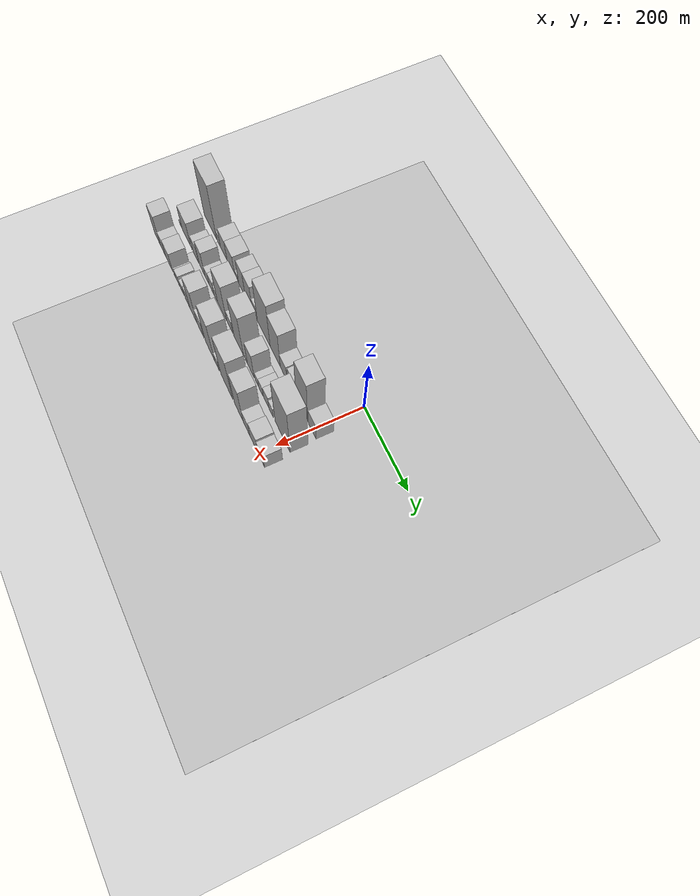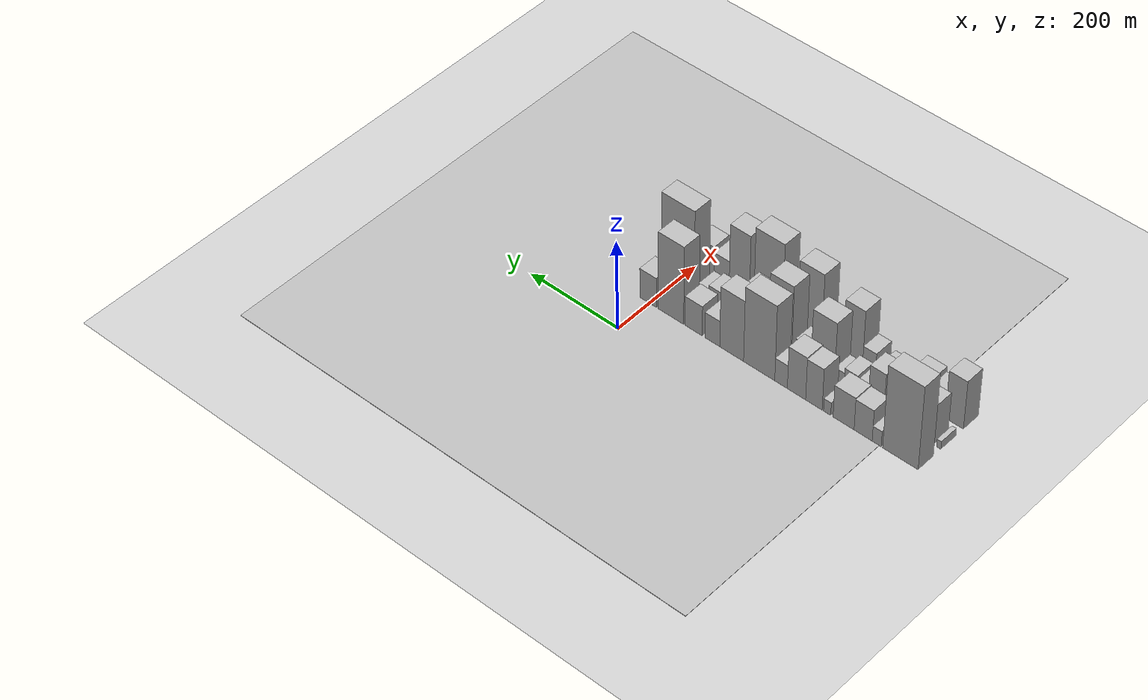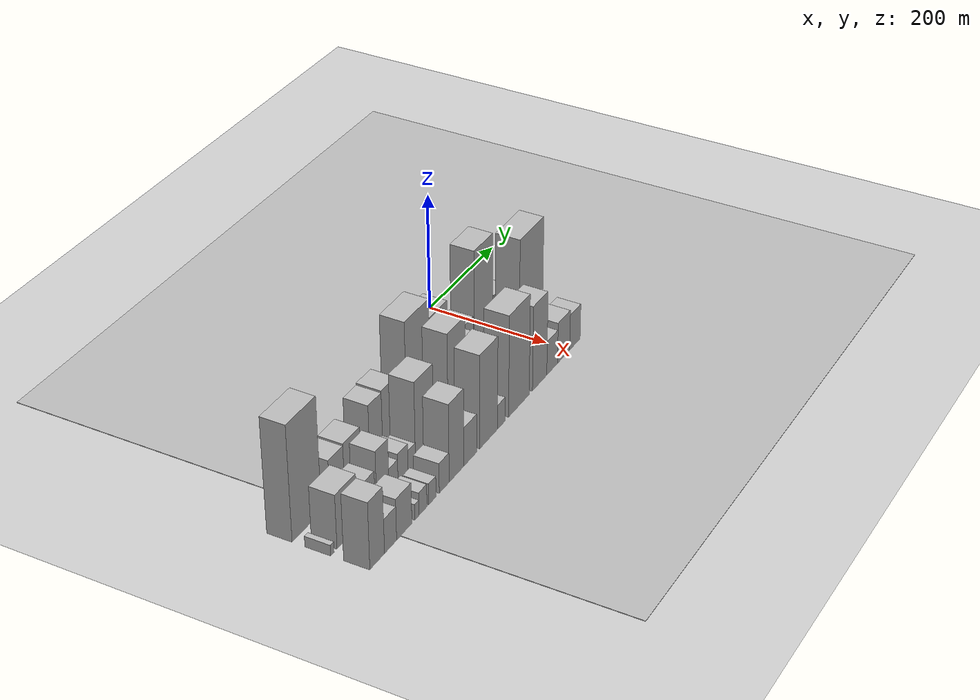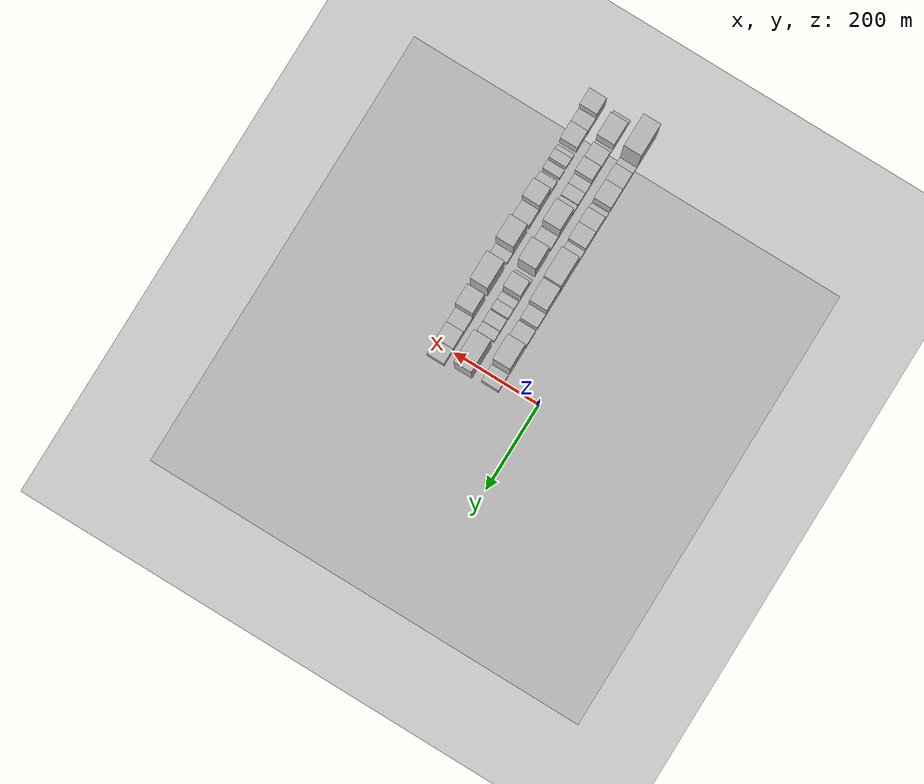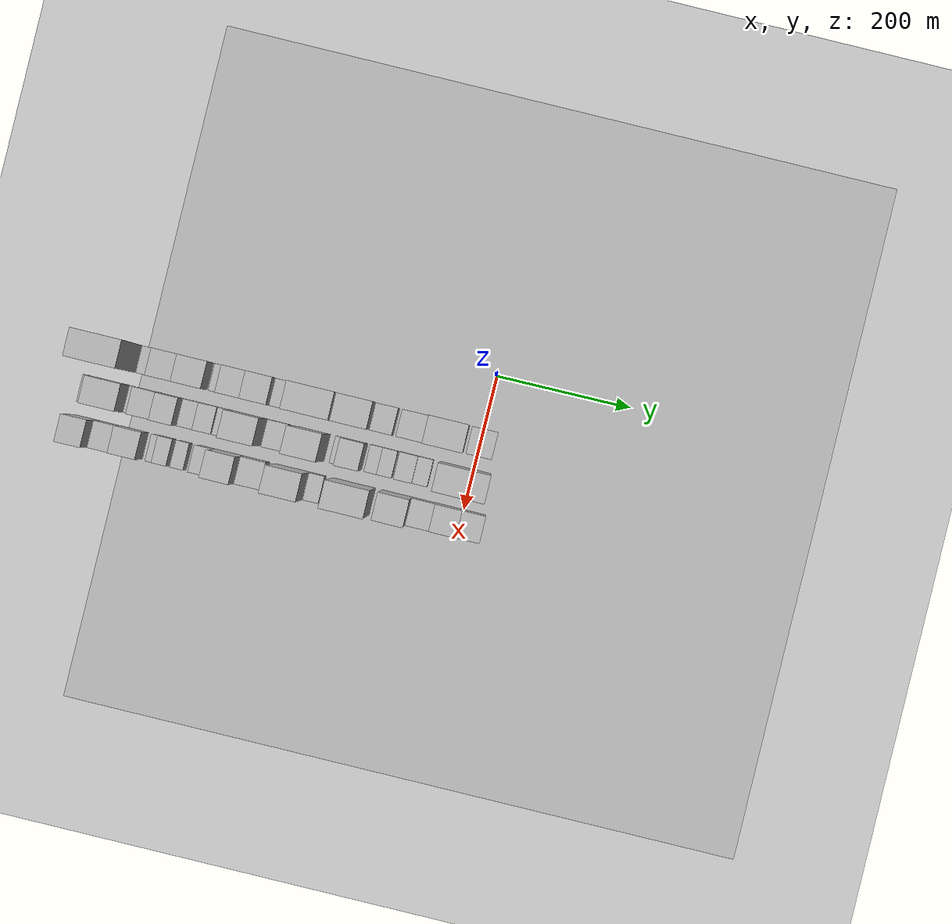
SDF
<sdf version="1.6">
 <world name="default">
  <include><name>ground_plane_1</name><uri>model://HANNAS_ground_plane</uri></include>
  <include>
   <name>ground_plane_2</name>
   <uri>model://HANNAS_ground_plane</uri>
   <pose>100 0 0  0 0 0</pose>
  </include>
  <model name="building_1">
   <static>1</static>
   <pose>100.0000 -543.3628 0 0.000000 0.000000 0.000000</pose>
   <link name="link">
    <pose>0 0 96.00 0 0 0</pose>
    <collision name="collision"><geometry><box><size>40.0000 73.2743 192.0000</size></box></geometry></collision>
    <visual name="visual">
     <cast_shadows>0</cast_shadows>
     <geometry><box><size>40.0000 73.2743 192.0000</size></box></geometry>
     <material>
      <script>
       <uri>model://HANNAS_wall/materials/scripts</uri>
       <uri>model://HANNAS_wall/materials/textures</uri>
       <name>vrc/HANNAS_wall</name>
      </script>
     </material>
    </visual>
   </link>
  </model>
  <model name="building_2">
   <static>1</static>
   <pose>100.0000 -494.3452 0 0.000000 0.000000 0.000000</pose>
   <link name="link">
    <pose>0 0 18.00 0 0 0</pose>
    <collision name="collision"><geometry><box><size>40.0000 18.7610 36.0000</size></box></geometry></collision>
    <visual name="visual">
     <cast_shadows>0</cast_shadows>
     <geometry><box><size>40.0000 18.7610 36.0000</size></box></geometry>
     <material>
      <script>
       <uri>model://HANNAS_wall/materials/scripts</uri>
       <uri>model://HANNAS_wall/materials/textures</uri>
       <name>vrc/HANNAS_wall</name>
      </script>
     </material>
    </visual>
   </link>
  </model>
  <model name="building_3">
   <static>1</static>
   <pose>100.0000 -466.0397 0 0.000000 0.000000 0.000000</pose>
   <link name="link">
    <pose>0 0 36.00 0 0 0</pose>
    <collision name="collision"><geometry><box><size>40.0000 37.8501 72.0000</size></box></geometry></collision>
    <visual name="visual">
     <cast_shadows>0</cast_shadows>
     <geometry><box><size>40.0000 37.8501 72.0000</size></box></geometry>
     <material>
      <script>
       <uri>model://HANNAS_wall/materials/scripts</uri>
       <uri>model://HANNAS_wall/materials/textures</uri>
       <name>vrc/HANNAS_wall</name>
      </script>
     </material>
    </visual>
   </link>
  </model>
  <model name="building_4">
   <static>1</static>
   <pose>100.0000 -424.9990 0 0.000000 0.000000 0.000000</pose>
   <link name="link">
    <pose>0 0 37.50 0 0 0</pose>
    <collision name="collision"><geometry><box><size>40.0000 44.2313 75.0000</size></box></geometry></collision>
    <visual name="visual">
     <cast_shadows>0</cast_shadows>
     <geometry><box><size>40.0000 44.2313 75.0000</size></box></geometry>
     <material>
      <script>
       <uri>model://HANNAS_wall/materials/scripts</uri>
       <uri>model://HANNAS_wall/materials/textures</uri>
       <name>vrc/HANNAS_wall</name>
      </script>
     </material>
    </visual>
   </link>
  </model>
  <model name="building_5">
   <static>1</static>
   <pose>100.0000 -390.2851 0 0.000000 0.000000 0.000000</pose>
   <link name="link">
    <pose>0 0 15.00 0 0 0</pose>
    <collision name="collision"><geometry><box><size>40.0000 15.1964 30.0000</size></box></geometry></collision>
    <visual name="visual">
     <cast_shadows>0</cast_shadows>
     <geometry><box><size>40.0000 15.1964 30.0000</size></box></geometry>
     <material>
      <script>
       <uri>model://HANNAS_wall/materials/scripts</uri>
       <uri>model://HANNAS_wall/materials/textures</uri>
       <name>vrc/HANNAS_wall</name>
      </script>
     </material>
    </visual>
   </link>
  </model>
  <model name="building_6">
   <static>1</static>
   <pose>100.0000 -362.1027 0 0.000000 0.000000 0.000000</pose>
   <link name="link">
    <pose>0 0 48.00 0 0 0</pose>
    <collision name="collision"><geometry><box><size>40.0000 35.1683 96.0000</size></box></geometry></collision>
    <visual name="visual">
     <cast_shadows>0</cast_shadows>
     <geometry><box><size>40.0000 35.1683 96.0000</size></box></geometry>
     <material>
      <script>
       <uri>model://HANNAS_wall/materials/scripts</uri>
       <uri>model://HANNAS_wall/materials/textures</uri>
       <name>vrc/HANNAS_wall</name>
      </script>
     </material>
    </visual>
   </link>
  </model>
  <model name="building_7">
   <static>1</static>
   <pose>100.0000 -324.9261 0 0.000000 0.000000 0.000000</pose>
   <link name="link">
    <pose>0 0 49.50 0 0 0</pose>
    <collision name="collision"><geometry><box><size>40.0000 39.1849 99.0000</size></box></geometry></collision>
    <visual name="visual">
     <cast_shadows>0</cast_shadows>
     <geometry><box><size>40.0000 39.1849 99.0000</size></box></geometry>
     <material>
      <script>
       <uri>model://HANNAS_wall/materials/scripts</uri>
       <uri>model://HANNAS_wall/materials/textures</uri>
       <name>vrc/HANNAS_wall</name>
      </script>
     </material>
    </visual>
   </link>
  </model>
  <model name="building_8">
   <static>1</static>
   <pose>100.0000 -291.7243 0 0.000000 0.000000 0.000000</pose>
   <link name="link">
    <pose>0 0 27.00 0 0 0</pose>
    <collision name="collision"><geometry><box><size>40.0000 27.2187 54.0000</size></box></geometry></collision>
    <visual name="visual">
     <cast_shadows>0</cast_shadows>
     <geometry><box><size>40.0000 27.2187 54.0000</size></box></geometry>
     <material>
      <script>
       <uri>model://HANNAS_wall/materials/scripts</uri>
       <uri>model://HANNAS_wall/materials/textures</uri>
       <name>vrc/HANNAS_wall</name>
      </script>
     </material>
    </visual>
   </link>
  </model>
  <model name="building_9">
   <static>1</static>
   <pose>100.0000 -244.1789 0 0.000000 0.000000 0.000000</pose>
   <link name="link">
    <pose>0 0 87.00 0 0 0</pose>
    <collision name="collision"><geometry><box><size>40.0000 67.8723 174.0000</size></box></geometry></collision>
    <visual name="visual">
     <cast_shadows>0</cast_shadows>
     <geometry><box><size>40.0000 67.8723 174.0000</size></box></geometry>
     <material>
      <script>
       <uri>model://HANNAS_wall/materials/scripts</uri>
       <uri>model://HANNAS_wall/materials/textures</uri>
       <name>vrc/HANNAS_wall</name>
      </script>
     </material>
    </visual>
   </link>
  </model>
  <model name="building_10">
   <static>1</static>
   <pose>100.0000 -184.0517 0 0.000000 0.000000 0.000000</pose>
   <link name="link">
    <pose>0 0 70.50 0 0 0</pose>
    <collision name="collision"><geometry><box><size>40.0000 52.3820 141.0000</size></box></geometry></collision>
    <visual name="visual">
     <cast_shadows>0</cast_shadows>
     <geometry><box><size>40.0000 52.3820 141.0000</size></box></geometry>
     <material>
      <script>
       <uri>model://HANNAS_wall/materials/scripts</uri>
       <uri>model://HANNAS_wall/materials/textures</uri>
       <name>vrc/HANNAS_wall</name>
      </script>
     </material>
    </visual>
   </link>
  </model>
  <model name="building_11">
   <static>1</static>
   <pose>100.0000 -141.3786 0 0.000000 0.000000 0.000000</pose>
   <link name="link">
    <pose>0 0 30.00 0 0 0</pose>
    <collision name="collision"><geometry><box><size>40.0000 32.9641 60.0000</size></box></geometry></collision>
    <visual name="visual">
     <cast_shadows>0</cast_shadows>
     <geometry><box><size>40.0000 32.9641 60.0000</size></box></geometry>
     <material>
      <script>
       <uri>model://HANNAS_wall/materials/scripts</uri>
       <uri>model://HANNAS_wall/materials/textures</uri>
       <name>vrc/HANNAS_wall</name>
      </script>
     </material>
    </visual>
   </link>
  </model>
  <model name="building_12">
   <static>1</static>
   <pose>100.0000 -99.7368 0 0.000000 0.000000 0.000000</pose>
   <link name="link">
    <pose>0 0 34.50 0 0 0</pose>
    <collision name="collision"><geometry><box><size>40.0000 38.3196 69.0000</size></box></geometry></collision>
    <visual name="visual">
     <cast_shadows>0</cast_shadows>
     <geometry><box><size>40.0000 38.3196 69.0000</size></box></geometry>
     <material>
      <script>
       <uri>model://HANNAS_wall/materials/scripts</uri>
       <uri>model://HANNAS_wall/materials/textures</uri>
       <name>vrc/HANNAS_wall</name>
      </script>
     </material>
    </visual>
   </link>
  </model>
  <model name="building_13">
   <static>1</static>
   <pose>100.0000 -49.0089 0 0.000000 0.000000 0.000000</pose>
   <link name="link">
    <pose>0 0 90.00 0 0 0</pose>
    <collision name="collision"><geometry><box><size>40.0000 57.1362 180.0000</size></box></geometry></collision>
    <visual name="visual">
     <cast_shadows>0</cast_shadows>
     <geometry><box><size>40.0000 57.1362 180.0000</size></box></geometry>
     <material>
      <script>
       <uri>model://HANNAS_wall/materials/scripts</uri>
       <uri>model://HANNAS_wall/materials/textures</uri>
       <name>vrc/HANNAS_wall</name>
      </script>
     </material>
    </visual>
   </link>
  </model>
  <model name="building_14">
   <static>1</static>
   <pose>100.0000 2.4698 0 0.000000 0.000000 0.000000</pose>
   <link name="link">
    <pose>0 0 34.50 0 0 0</pose>
    <collision name="collision"><geometry><box><size>40.0000 37.8213 69.0000</size></box></geometry></collision>
    <visual name="visual">
     <cast_shadows>0</cast_shadows>
     <geometry><box><size>40.0000 37.8213 69.0000</size></box></geometry>
     <material>
      <script>
       <uri>model://HANNAS_wall/materials/scripts</uri>
       <uri>model://HANNAS_wall/materials/textures</uri>
       <name>vrc/HANNAS_wall</name>
      </script>
     </material>
    </visual>
   </link>
  </model>
  <model name="building_30">
   <static>1</static>
   <pose>160.0000 -575.5376 0 0.000000 0.000000 0.000000</pose>
   <link name="link">
    <pose>0 0 9.00 0 0 0</pose>
    <collision name="collision"><geometry><box><size>40.0000 8.9249 18.0000</size></box></geometry></collision>
    <visual name="visual">
     <cast_shadows>0</cast_shadows>
     <geometry><box><size>40.0000 8.9249 18.0000</size></box></geometry>
     <material>
      <script>
       <uri>model://HANNAS_wall/materials/scripts</uri>
       <uri>model://HANNAS_wall/materials/textures</uri>
       <name>vrc/HANNAS_wall</name>
      </script>
     </material>
    </visual>
   </link>
  </model>
  <model name="building_31">
   <static>1</static>
   <pose>160.0000 -537.7754 0 0.000000 0.000000 0.000000</pose>
   <link name="link">
    <pose>0 0 45.00 0 0 0</pose>
    <collision name="collision"><geometry><box><size>40.0000 52.5994 90.0000</size></box></geometry></collision>
    <visual name="visual">
     <cast_shadows>0</cast_shadows>
     <geometry><box><size>40.0000 52.5994 90.0000</size></box></geometry>
     <material>
      <script>
       <uri>model://HANNAS_wall/materials/scripts</uri>
       <uri>model://HANNAS_wall/materials/textures</uri>
       <name>vrc/HANNAS_wall</name>
      </script>
     </material>
    </visual>
   </link>
  </model>
  <model name="building_32">
   <static>1</static>
   <pose>160.0000 -507.9673 0 0.000000 0.000000 0.000000</pose>
   <link name="link">
    <pose>0 0 7.50 0 0 0</pose>
    <collision name="collision"><geometry><box><size>40.0000 7.0168 15.0000</size></box></geometry></collision>
    <visual name="visual">
     <cast_shadows>0</cast_shadows>
     <geometry><box><size>40.0000 7.0168 15.0000</size></box></geometry>
     <material>
      <script>
       <uri>model://HANNAS_wall/materials/scripts</uri>
       <uri>model://HANNAS_wall/materials/textures</uri>
       <name>vrc/HANNAS_wall</name>
      </script>
     </material>
    </visual>
   </link>
  </model>
  <model name="building_33">
   <static>1</static>
   <pose>160.0000 -482.4721 0 0.000000 0.000000 0.000000</pose>
   <link name="link">
    <pose>0 0 31.50 0 0 0</pose>
    <collision name="collision"><geometry><box><size>40.0000 33.9736 63.0000</size></box></geometry></collision>
    <visual name="visual">
     <cast_shadows>0</cast_shadows>
     <geometry><box><size>40.0000 33.9736 63.0000</size></box></geometry>
     <material>
      <script>
       <uri>model://HANNAS_wall/materials/scripts</uri>
       <uri>model://HANNAS_wall/materials/textures</uri>
       <name>vrc/HANNAS_wall</name>
      </script>
     </material>
    </visual>
   </link>
  </model>
  <model name="building_34">
   <static>1</static>
   <pose>160.0000 -444.8592 0 0.000000 0.000000 0.000000</pose>
   <link name="link">
    <pose>0 0 46.50 0 0 0</pose>
    <collision name="collision"><geometry><box><size>40.0000 33.2523 93.0000</size></box></geometry></collision>
    <visual name="visual">
     <cast_shadows>0</cast_shadows>
     <geometry><box><size>40.0000 33.2523 93.0000</size></box></geometry>
     <material>
      <script>
       <uri>model://HANNAS_wall/materials/scripts</uri>
       <uri>model://HANNAS_wall/materials/textures</uri>
       <name>vrc/HANNAS_wall</name>
      </script>
     </material>
    </visual>
   </link>
  </model>
  <model name="building_35">
   <static>1</static>
   <pose>160.0000 -416.3268 0 0.000000 0.000000 0.000000</pose>
   <link name="link">
    <pose>0 0 21.00 0 0 0</pose>
    <collision name="collision"><geometry><box><size>40.0000 23.8125 42.0000</size></box></geometry></collision>
    <visual name="visual">
     <cast_shadows>0</cast_shadows>
     <geometry><box><size>40.0000 23.8125 42.0000</size></box></geometry>
     <material>
      <script>
       <uri>model://HANNAS_wall/materials/scripts</uri>
       <uri>model://HANNAS_wall/materials/textures</uri>
       <name>vrc/HANNAS_wall</name>
      </script>
     </material>
    </visual>
   </link>
  </model>
  <model name="building_36">
   <static>1</static>
   <pose>160.0000 -390.6850 0 0.000000 0.000000 0.000000</pose>
   <link name="link">
    <pose>0 0 25.50 0 0 0</pose>
    <collision name="collision"><geometry><box><size>40.0000 27.4712 51.0000</size></box></geometry></collision>
    <visual name="visual">
     <cast_shadows>0</cast_shadows>
     <geometry><box><size>40.0000 27.4712 51.0000</size></box></geometry>
     <material>
      <script>
       <uri>model://HANNAS_wall/materials/scripts</uri>
       <uri>model://HANNAS_wall/materials/textures</uri>
       <name>vrc/HANNAS_wall</name>
      </script>
     </material>
    </visual>
   </link>
  </model>
  <model name="building_37">
   <static>1</static>
   <pose>160.0000 -366.7879 0 0.000000 0.000000 0.000000</pose>
   <link name="link">
    <pose>0 0 19.50 0 0 0</pose>
    <collision name="collision"><geometry><box><size>40.0000 20.3230 39.0000</size></box></geometry></collision>
    <visual name="visual">
     <cast_shadows>0</cast_shadows>
     <geometry><box><size>40.0000 20.3230 39.0000</size></box></geometry>
     <material>
      <script>
       <uri>model://HANNAS_wall/materials/scripts</uri>
       <uri>model://HANNAS_wall/materials/textures</uri>
       <name>vrc/HANNAS_wall</name>
      </script>
     </material>
    </visual>
   </link>
  </model>
  <model name="building_38">
   <static>1</static>
   <pose>160.0000 -331.2921 0 0.000000 0.000000 0.000000</pose>
   <link name="link">
    <pose>0 0 70.50 0 0 0</pose>
    <collision name="collision"><geometry><box><size>40.0000 50.6685 141.0000</size></box></geometry></collision>
    <visual name="visual">
     <cast_shadows>0</cast_shadows>
     <geometry><box><size>40.0000 50.6685 141.0000</size></box></geometry>
     <material>
      <script>
       <uri>model://HANNAS_wall/materials/scripts</uri>
       <uri>model://HANNAS_wall/materials/textures</uri>
       <name>vrc/HANNAS_wall</name>
      </script>
     </material>
    </visual>
   </link>
  </model>
  <model name="building_39">
   <static>1</static>
   <pose>160.0000 -287.7018 0 0.000000 0.000000 0.000000</pose>
   <link name="link">
    <pose>0 0 25.50 0 0 0</pose>
    <collision name="collision"><geometry><box><size>40.0000 30.5122 51.0000</size></box></geometry></collision>
    <visual name="visual">
     <cast_shadows>0</cast_shadows>
     <geometry><box><size>40.0000 30.5122 51.0000</size></box></geometry>
     <material>
      <script>
       <uri>model://HANNAS_wall/materials/scripts</uri>
       <uri>model://HANNAS_wall/materials/textures</uri>
       <name>vrc/HANNAS_wall</name>
      </script>
     </material>
    </visual>
   </link>
  </model>
  <model name="building_40">
   <static>1</static>
   <pose>160.0000 -239.0729 0 0.000000 0.000000 0.000000</pose>
   <link name="link">
    <pose>0 0 82.50 0 0 0</pose>
    <collision name="collision"><geometry><box><size>40.0000 50.7455 165.0000</size></box></geometry></collision>
    <visual name="visual">
     <cast_shadows>0</cast_shadows>
     <geometry><box><size>40.0000 50.7455 165.0000</size></box></geometry>
     <material>
      <script>
       <uri>model://HANNAS_wall/materials/scripts</uri>
       <uri>model://HANNAS_wall/materials/textures</uri>
       <name>vrc/HANNAS_wall</name>
      </script>
     </material>
    </visual>
   </link>
  </model>
  <model name="building_41">
   <static>1</static>
   <pose>160.0000 -198.7785 0 0.000000 0.000000 0.000000</pose>
   <link name="link">
    <pose>0 0 12.00 0 0 0</pose>
    <collision name="collision"><geometry><box><size>40.0000 11.8434 24.0000</size></box></geometry></collision>
    <visual name="visual">
     <cast_shadows>0</cast_shadows>
     <geometry><box><size>40.0000 11.8434 24.0000</size></box></geometry>
     <material>
      <script>
       <uri>model://HANNAS_wall/materials/scripts</uri>
       <uri>model://HANNAS_wall/materials/textures</uri>
       <name>vrc/HANNAS_wall</name>
      </script>
     </material>
    </visual>
   </link>
  </model>
  <model name="building_42">
   <static>1</static>
   <pose>160.0000 -175.2770 0 0.000000 0.000000 0.000000</pose>
   <link name="link">
    <pose>0 0 51.00 0 0 0</pose>
    <collision name="collision"><geometry><box><size>40.0000 35.1595 102.0000</size></box></geometry></collision>
    <visual name="visual">
     <cast_shadows>0</cast_shadows>
     <geometry><box><size>40.0000 35.1595 102.0000</size></box></geometry>
     <material>
      <script>
       <uri>model://HANNAS_wall/materials/scripts</uri>
       <uri>model://HANNAS_wall/materials/textures</uri>
       <name>vrc/HANNAS_wall</name>
      </script>
     </material>
    </visual>
   </link>
  </model>
  <model name="building_43">
   <static>1</static>
   <pose>160.0000 -143.2913 0 0.000000 0.000000 0.000000</pose>
   <link name="link">
    <pose>0 0 18.00 0 0 0</pose>
    <collision name="collision"><geometry><box><size>40.0000 18.8119 36.0000</size></box></geometry></collision>
    <visual name="visual">
     <cast_shadows>0</cast_shadows>
     <geometry><box><size>40.0000 18.8119 36.0000</size></box></geometry>
     <material>
      <script>
       <uri>model://HANNAS_wall/materials/scripts</uri>
       <uri>model://HANNAS_wall/materials/textures</uri>
       <name>vrc/HANNAS_wall</name>
      </script>
     </material>
    </visual>
   </link>
  </model>
  <model name="building_44">
   <static>1</static>
   <pose>160.0000 -122.7783 0 0.000000 0.000000 0.000000</pose>
   <link name="link">
    <pose>0 0 21.00 0 0 0</pose>
    <collision name="collision"><geometry><box><size>40.0000 22.2140 42.0000</size></box></geometry></collision>
    <visual name="visual">
     <cast_shadows>0</cast_shadows>
     <geometry><box><size>40.0000 22.2140 42.0000</size></box></geometry>
     <material>
      <script>
       <uri>model://HANNAS_wall/materials/scripts</uri>
       <uri>model://HANNAS_wall/materials/textures</uri>
       <name>vrc/HANNAS_wall</name>
      </script>
     </material>
    </visual>
   </link>
  </model>
  <model name="building_45">
   <static>1</static>
   <pose>160.0000 -95.1053 0 0.000000 0.000000 0.000000</pose>
   <link name="link">
    <pose>0 0 25.50 0 0 0</pose>
    <collision name="collision"><geometry><box><size>40.0000 27.1321 51.0000</size></box></geometry></collision>
    <visual name="visual">
     <cast_shadows>0</cast_shadows>
     <geometry><box><size>40.0000 27.1321 51.0000</size></box></geometry>
     <material>
      <script>
       <uri>model://HANNAS_wall/materials/scripts</uri>
       <uri>model://HANNAS_wall/materials/textures</uri>
       <name>vrc/HANNAS_wall</name>
      </script>
     </material>
    </visual>
   </link>
  </model>
  <model name="building_46">
   <static>1</static>
   <pose>160.0000 -70.3096 0 0.000000 0.000000 0.000000</pose>
   <link name="link">
    <pose>0 0 21.00 0 0 0</pose>
    <collision name="collision"><geometry><box><size>40.0000 22.4592 42.0000</size></box></geometry></collision>
    <visual name="visual">
     <cast_shadows>0</cast_shadows>
     <geometry><box><size>40.0000 22.4592 42.0000</size></box></geometry>
     <material>
      <script>
       <uri>model://HANNAS_wall/materials/scripts</uri>
       <uri>model://HANNAS_wall/materials/textures</uri>
       <name>vrc/HANNAS_wall</name>
      </script>
     </material>
    </visual>
   </link>
  </model>
  <model name="building_47">
   <static>1</static>
   <pose>160.0000 -11.9631 0 0.000000 0.000000 0.000000</pose>
   <link name="link">
    <pose>0 0 100.50 0 0 0</pose>
    <collision name="collision"><geometry><box><size>40.0000 74.2337 201.0000</size></box></geometry></collision>
    <visual name="visual">
     <cast_shadows>0</cast_shadows>
     <geometry><box><size>40.0000 74.2337 201.0000</size></box></geometry>
     <material>
      <script>
       <uri>model://HANNAS_wall/materials/scripts</uri>
       <uri>model://HANNAS_wall/materials/textures</uri>
       <name>vrc/HANNAS_wall</name>
      </script>
     </material>
    </visual>
   </link>
  </model>
  <model name="building_65">
   <static>1</static>
   <pose>220.0000 -561.1415 0 0.000000 0.000000 0.000000</pose>
   <link name="link">
    <pose>0 0 55.50 0 0 0</pose>
    <collision name="collision"><geometry><box><size>40.0000 37.7169 111.0000</size></box></geometry></collision>
    <visual name="visual">
     <cast_shadows>0</cast_shadows>
     <geometry><box><size>40.0000 37.7169 111.0000</size></box></geometry>
     <material>
      <script>
       <uri>model://HANNAS_wall/materials/scripts</uri>
       <uri>model://HANNAS_wall/materials/textures</uri>
       <name>vrc/HANNAS_wall</name>
      </script>
     </material>
    </visual>
   </link>
  </model>
  <model name="building_66">
   <static>1</static>
   <pose>220.0000 -526.5731 0 0.000000 0.000000 0.000000</pose>
   <link name="link">
    <pose>0 0 28.50 0 0 0</pose>
    <collision name="collision"><geometry><box><size>40.0000 31.4200 57.0000</size></box></geometry></collision>
    <visual name="visual">
     <cast_shadows>0</cast_shadows>
     <geometry><box><size>40.0000 31.4200 57.0000</size></box></geometry>
     <material>
      <script>
       <uri>model://HANNAS_wall/materials/scripts</uri>
       <uri>model://HANNAS_wall/materials/textures</uri>
       <name>vrc/HANNAS_wall</name>
      </script>
     </material>
    </visual>
   </link>
  </model>
  <model name="building_67">
   <static>1</static>
   <pose>220.0000 -490.6515 0 0.000000 0.000000 0.000000</pose>
   <link name="link">
    <pose>0 0 34.50 0 0 0</pose>
    <collision name="collision"><geometry><box><size>40.0000 40.4232 69.0000</size></box></geometry></collision>
    <visual name="visual">
     <cast_shadows>0</cast_shadows>
     <geometry><box><size>40.0000 40.4232 69.0000</size></box></geometry>
     <material>
      <script>
       <uri>model://HANNAS_wall/materials/scripts</uri>
       <uri>model://HANNAS_wall/materials/textures</uri>
       <name>vrc/HANNAS_wall</name>
      </script>
     </material>
    </visual>
   </link>
  </model>
  <model name="building_68">
   <static>1</static>
   <pose>220.0000 -456.9043 0 0.000000 0.000000 0.000000</pose>
   <link name="link">
    <pose>0 0 13.50 0 0 0</pose>
    <collision name="collision"><geometry><box><size>40.0000 11.0712 27.0000</size></box></geometry></collision>
    <visual name="visual">
     <cast_shadows>0</cast_shadows>
     <geometry><box><size>40.0000 11.0712 27.0000</size></box></geometry>
     <material>
      <script>
       <uri>model://HANNAS_wall/materials/scripts</uri>
       <uri>model://HANNAS_wall/materials/textures</uri>
       <name>vrc/HANNAS_wall</name>
      </script>
     </material>
    </visual>
   </link>
  </model>
  <model name="building_69">
   <static>1</static>
   <pose>220.0000 -440.4884 0 0.000000 0.000000 0.000000</pose>
   <link name="link">
    <pose>0 0 19.50 0 0 0</pose>
    <collision name="collision"><geometry><box><size>40.0000 21.7606 39.0000</size></box></geometry></collision>
    <visual name="visual">
     <cast_shadows>0</cast_shadows>
     <geometry><box><size>40.0000 21.7606 39.0000</size></box></geometry>
     <material>
      <script>
       <uri>model://HANNAS_wall/materials/scripts</uri>
       <uri>model://HANNAS_wall/materials/textures</uri>
       <name>vrc/HANNAS_wall</name>
      </script>
     </material>
    </visual>
   </link>
  </model>
  <model name="building_70">
   <static>1</static>
   <pose>220.0000 -414.7247 0 0.000000 0.000000 0.000000</pose>
   <link name="link">
    <pose>0 0 18.00 0 0 0</pose>
    <collision name="collision"><geometry><box><size>40.0000 19.7668 36.0000</size></box></geometry></collision>
    <visual name="visual">
     <cast_shadows>0</cast_shadows>
     <geometry><box><size>40.0000 19.7668 36.0000</size></box></geometry>
     <material>
      <script>
       <uri>model://HANNAS_wall/materials/scripts</uri>
       <uri>model://HANNAS_wall/materials/textures</uri>
       <name>vrc/HANNAS_wall</name>
      </script>
     </material>
    </visual>
   </link>
  </model>
  <model name="building_71">
   <static>1</static>
   <pose>220.0000 -382.0252 0 0.000000 0.000000 0.000000</pose>
   <link name="link">
    <pose>0 0 25.50 0 0 0</pose>
    <collision name="collision"><geometry><box><size>40.0000 27.6322 51.0000</size></box></geometry></collision>
    <visual name="visual">
     <cast_shadows>0</cast_shadows>
     <geometry><box><size>40.0000 27.6322 51.0000</size></box></geometry>
     <material>
      <script>
       <uri>model://HANNAS_wall/materials/scripts</uri>
       <uri>model://HANNAS_wall/materials/textures</uri>
       <name>vrc/HANNAS_wall</name>
      </script>
     </material>
    </visual>
   </link>
  </model>
  <model name="building_72">
   <static>1</static>
   <pose>220.0000 -347.2264 0 0.000000 0.000000 0.000000</pose>
   <link name="link">
    <pose>0 0 66.00 0 0 0</pose>
    <collision name="collision"><geometry><box><size>40.0000 41.9654 132.0000</size></box></geometry></collision>
    <visual name="visual">
     <cast_shadows>0</cast_shadows>
     <geometry><box><size>40.0000 41.9654 132.0000</size></box></geometry>
     <material>
      <script>
       <uri>model://HANNAS_wall/materials/scripts</uri>
       <uri>model://HANNAS_wall/materials/textures</uri>
       <name>vrc/HANNAS_wall</name>
      </script>
     </material>
    </visual>
   </link>
  </model>
  <model name="building_73">
   <static>1</static>
   <pose>220.0000 -307.8367 0 0.000000 0.000000 0.000000</pose>
   <link name="link">
    <pose>0 0 33.00 0 0 0</pose>
    <collision name="collision"><geometry><box><size>40.0000 36.8139 66.0000</size></box></geometry></collision>
    <visual name="visual">
     <cast_shadows>0</cast_shadows>
     <geometry><box><size>40.0000 36.8139 66.0000</size></box></geometry>
     <material>
      <script>
       <uri>model://HANNAS_wall/materials/scripts</uri>
       <uri>model://HANNAS_wall/materials/textures</uri>
       <name>vrc/HANNAS_wall</name>
      </script>
     </material>
    </visual>
   </link>
  </model>
  <model name="building_74">
   <static>1</static>
   <pose>220.0000 -254.1506 0 0.000000 0.000000 0.000000</pose>
   <link name="link">
    <pose>0 0 79.50 0 0 0</pose>
    <collision name="collision"><geometry><box><size>40.0000 52.5584 159.0000</size></box></geometry></collision>
    <visual name="visual">
     <cast_shadows>0</cast_shadows>
     <geometry><box><size>40.0000 52.5584 159.0000</size></box></geometry>
     <material>
      <script>
       <uri>model://HANNAS_wall/materials/scripts</uri>
       <uri>model://HANNAS_wall/materials/textures</uri>
       <name>vrc/HANNAS_wall</name>
      </script>
     </material>
    </visual>
   </link>
  </model>
  <model name="building_75">
   <static>1</static>
   <pose>220.0000 -216.3166 0 0.000000 0.000000 0.000000</pose>
   <link name="link">
    <pose>0 0 21.00 0 0 0</pose>
    <collision name="collision"><geometry><box><size>40.0000 23.1097 42.0000</size></box></geometry></collision>
    <visual name="visual">
     <cast_shadows>0</cast_shadows>
     <geometry><box><size>40.0000 23.1097 42.0000</size></box></geometry>
     <material>
      <script>
       <uri>model://HANNAS_wall/materials/scripts</uri>
       <uri>model://HANNAS_wall/materials/textures</uri>
       <name>vrc/HANNAS_wall</name>
      </script>
     </material>
    </visual>
   </link>
  </model>
  <model name="building_76">
   <static>1</static>
   <pose>220.0000 -163.1500 0 0.000000 0.000000 0.000000</pose>
   <link name="link">
    <pose>0 0 87.00 0 0 0</pose>
    <collision name="collision"><geometry><box><size>40.0000 63.2237 174.0000</size></box></geometry></collision>
    <visual name="visual">
     <cast_shadows>0</cast_shadows>
     <geometry><box><size>40.0000 63.2237 174.0000</size></box></geometry>
     <material>
      <script>
       <uri>model://HANNAS_wall/materials/scripts</uri>
       <uri>model://HANNAS_wall/materials/textures</uri>
       <name>vrc/HANNAS_wall</name>
      </script>
     </material>
    </visual>
   </link>
  </model>
  <model name="building_77">
   <static>1</static>
   <pose>220.0000 -98.8537 0 0.000000 0.000000 0.000000</pose>
   <link name="link">
    <pose>0 0 73.50 0 0 0</pose>
    <collision name="collision"><geometry><box><size>40.0000 45.3689 147.0000</size></box></geometry></collision>
    <visual name="visual">
     <cast_shadows>0</cast_shadows>
     <geometry><box><size>40.0000 45.3689 147.0000</size></box></geometry>
     <material>
      <script>
       <uri>model://HANNAS_wall/materials/scripts</uri>
       <uri>model://HANNAS_wall/materials/textures</uri>
       <name>vrc/HANNAS_wall</name>
      </script>
     </material>
    </visual>
   </link>
  </model>
  <model name="building_78">
   <static>1</static>
   <pose>220.0000 -58.8966 0 0.000000 0.000000 0.000000</pose>
   <link name="link">
    <pose>0 0 30.00 0 0 0</pose>
    <collision name="collision"><geometry><box><size>40.0000 34.5451 60.0000</size></box></geometry></collision>
    <visual name="visual">
     <cast_shadows>0</cast_shadows>
     <geometry><box><size>40.0000 34.5451 60.0000</size></box></geometry>
     <material>
      <script>
       <uri>model://HANNAS_wall/materials/scripts</uri>
       <uri>model://HANNAS_wall/materials/textures</uri>
       <name>vrc/HANNAS_wall</name>
      </script>
     </material>
    </visual>
   </link>
  </model>
  <model name="building_79">
   <static>1</static>
   <pose>220.0000 -21.7644 0 0.000000 0.000000 0.000000</pose>
   <link name="link">
    <pose>0 0 36.00 0 0 0</pose>
    <collision name="collision"><geometry><box><size>40.0000 39.7193 72.0000</size></box></geometry></collision>
    <visual name="visual">
     <cast_shadows>0</cast_shadows>
     <geometry><box><size>40.0000 39.7193 72.0000</size></box></geometry>
     <material>
      <script>
       <uri>model://HANNAS_wall/materials/scripts</uri>
       <uri>model://HANNAS_wall/materials/textures</uri>
       <name>vrc/HANNAS_wall</name>
      </script>
     </material>
    </visual>
   </link>
  </model>
  <model name="building_80">
   <static>1</static>
   <pose>220.0000 15.4389 0 0.000000 0.000000 0.000000</pose>
   <link name="link">
    <pose>0 0 31.50 0 0 0</pose>
    <collision name="collision"><geometry><box><size>40.0000 34.6872 63.0000</size></box></geometry></collision>
    <visual name="visual">
     <cast_shadows>0</cast_shadows>
     <geometry><box><size>40.0000 34.6872 63.0000</size></box></geometry>
     <material>
      <script>
       <uri>model://HANNAS_wall/materials/scripts</uri>
       <uri>model://HANNAS_wall/materials/textures</uri>
       <name>vrc/HANNAS_wall</name>
      </script>
     </material>
    </visual>
   </link>
  </model>
 </world>
</sdf>
